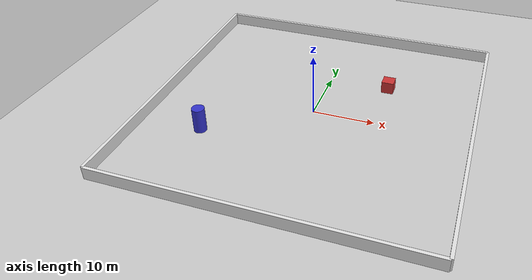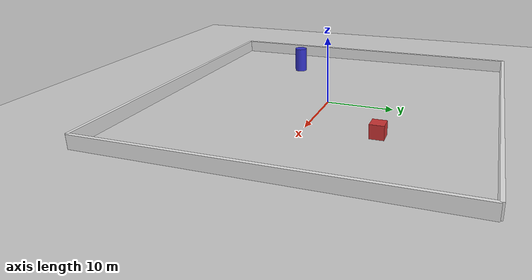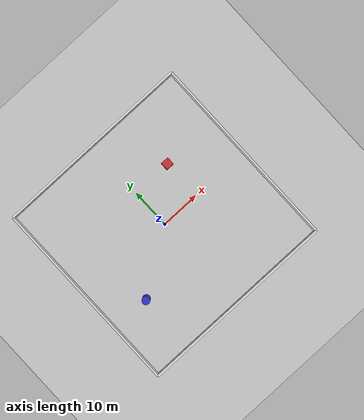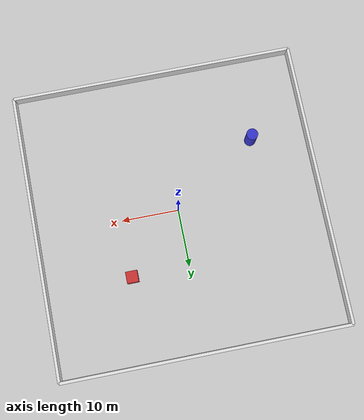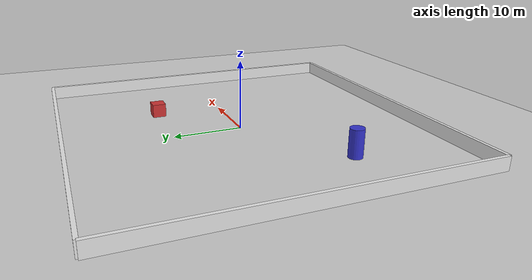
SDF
<?xml version="1.0" ?>
<sdf version="1.7">
  <world name="robot_world">

    <!-- Sunlight -->
    <include>
      <uri>model://sun</uri>
    </include>

    <!-- Ground plane -->
    <include>
      <uri>model://ground_plane</uri>
    </include>

    <!-- Large boundary walls (50x50m arena) -->
    <model name="wall_north">
      <pose>0 25 1 0 0 0</pose>
      <link name="link">
        <collision name="collision">
          <geometry><box><size>50 0.5 2</size></box></geometry>
        </collision>
        <visual name="visual">
          <geometry><box><size>50 0.5 2</size></box></geometry>
          <material><diffuse>0.9 0.9 0.9 1</diffuse></material>
        </visual>
      </link>
    </model>

    <model name="wall_south">
      <pose>0 -25 1 0 0 0</pose>
      <link name="link">
        <collision name="collision">
          <geometry><box><size>50 0.5 2</size></box></geometry>
        </collision>
        <visual name="visual">
          <geometry><box><size>50 0.5 2</size></box></geometry>
          <material><diffuse>0.9 0.9 0.9 1</diffuse></material>
        </visual>
      </link>
    </model>

    <model name="wall_east">
      <pose>25 0 1 0 0 0</pose>
      <link name="link">
        <collision name="collision">
          <geometry><box><size>0.5 50 2</size></box></geometry>
        </collision>
        <visual name="visual">
          <geometry><box><size>0.5 50 2</size></box></geometry>
          <material><diffuse>0.9 0.9 0.9 1</diffuse></material>
        </visual>
      </link>
    </model>

    <model name="wall_west">
      <pose>-25 0 1 0 0 0</pose>
      <link name="link">
        <collision name="collision">
          <geometry><box><size>0.5 50 2</size></box></geometry>
        </collision>
        <visual name="visual">
          <geometry><box><size>0.5 50 2</size></box></geometry>
          <material><diffuse>0.9 0.9 0.9 1</diffuse></material>
        </visual>
      </link>
    </model>

    <!-- A few far obstacles to test sensors at high speed -->
    <model name="big_box">
      <pose>10 10 1 0 0 0</pose>
      <link name="link">
        <collision name="collision">
          <geometry><box><size>2 2 2</size></box></geometry>
        </collision>
        <visual name="visual">
          <geometry><box><size>2 2 2</size></box></geometry>
          <material><diffuse>0.8 0.2 0.2 1</diffuse></material>
        </visual>
      </link>
    </model>

    <model name="tall_cylinder">
      <pose>-15 -10 2 0 0 0</pose>
      <link name="link">
        <collision name="collision">
          <geometry><cylinder><radius>1</radius><length>4</length></cylinder></geometry>
        </collision>
        <visual name="visual">
          <geometry><cylinder><radius>1</radius><length>4</length></cylinder></geometry>
          <material><diffuse>0.2 0.2 0.8 1</diffuse></material>
        </visual>
      </link>
    </model>

  </world>
</sdf>
